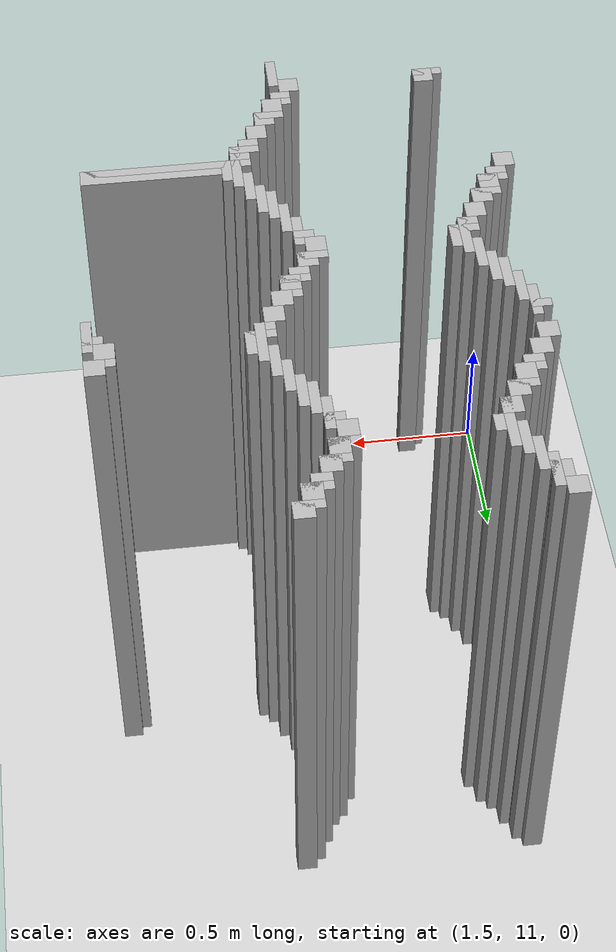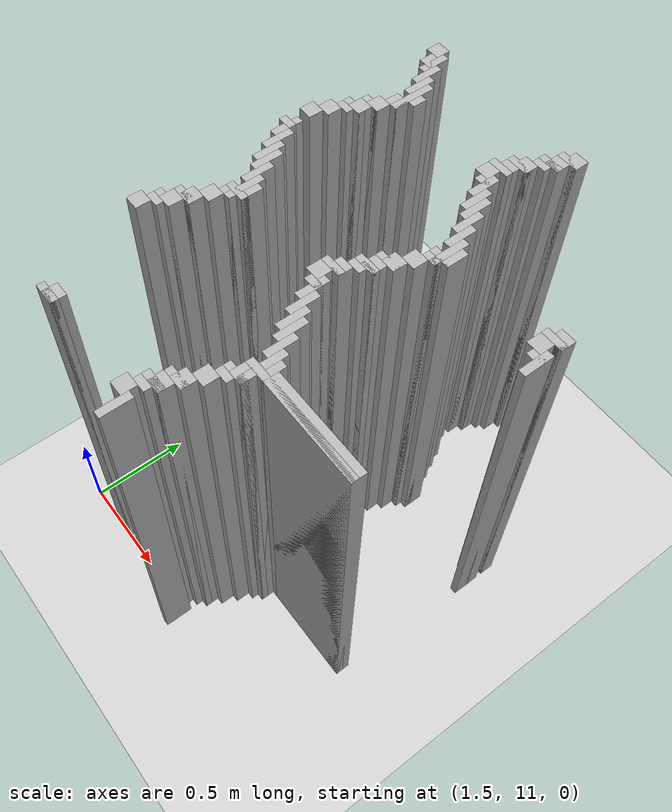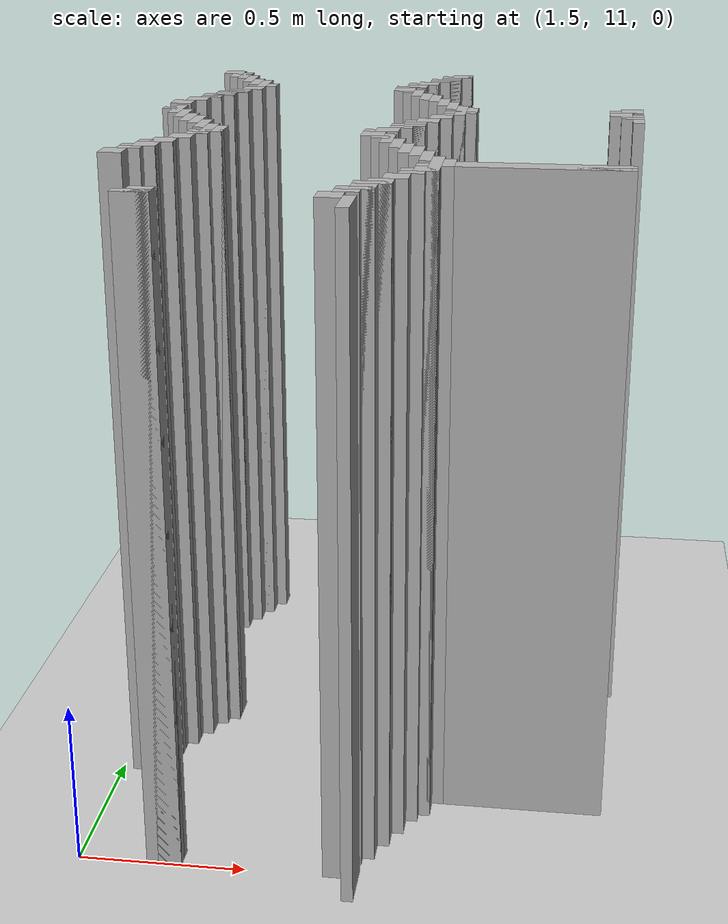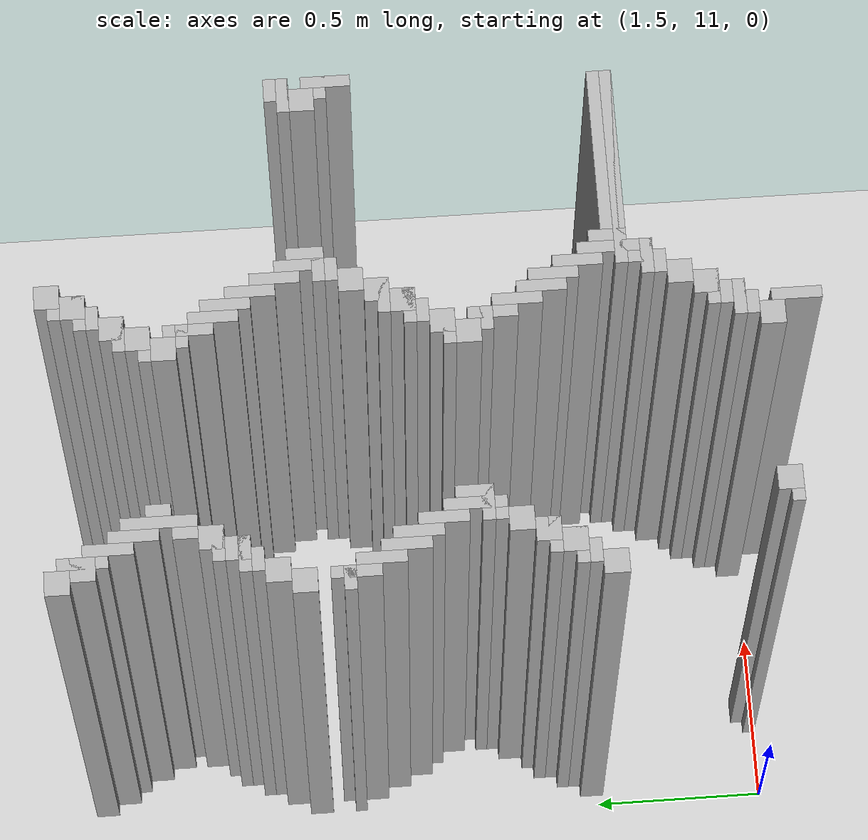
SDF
<sdf version="1.6">
 <world name="slam_world">
  <model name="ground_plane">
   <static>true</static>
   <link name="link">
    <collision name="collision">
     <geometry><plane><normal>0 0 1</normal><size>100 100</size></plane></geometry>
    </collision>
    <visual name="visual">
     <geometry><plane><normal>0 0 1</normal><size>100 100</size></plane></geometry>
     <material>
      <ambient>0.8 0.8 0.8 1</ambient>
      <diffuse>0.8 0.8 0.8 1</diffuse>
      <specular>0.8 0.8 0.8 1</specular>
     </material>
    </visual>
   </link>
  </model>
  <model name="wall_1463">
   <static>true</static>
   <pose>1.6009280742459395 13.016241299303944 1.0 0 0 0</pose>
   <link name="link">
    <collision name="collision">
     <geometry><box><size>0.06960556844547564 0.06960556844547564 2.0</size></box></geometry>
    </collision>
    <visual name="visual">
     <geometry><box><size>0.06960556844547564 0.06960556844547564 2.0</size></box></geometry>
     <material><ambient>0.5 0.5 0.5 1</ambient><diffuse>0.7 0.7 0.7 1</diffuse></material>
    </visual>
   </link>
  </model>
  <model name="wall_1464">
   <static>true</static>
   <pose>2.436194895591647 13.016241299303944 1.0 0 0 0</pose>
   <link name="link">
    <collision name="collision">
     <geometry><box><size>0.06960556844547564 0.06960556844547564 2.0</size></box></geometry>
    </collision>
    <visual name="visual">
     <geometry><box><size>0.06960556844547564 0.06960556844547564 2.0</size></box></geometry>
     <material><ambient>0.5 0.5 0.5 1</ambient><diffuse>0.7 0.7 0.7 1</diffuse></material>
    </visual>
   </link>
  </model>
  <model name="wall_1475">
   <static>true</static>
   <pose>1.6531322505800463 12.946635730858468 1.0 0 0 0</pose>
   <link name="link">
    <collision name="collision">
     <geometry><box><size>0.03480278422273782 0.13921113689095127 2.0</size></box></geometry>
    </collision>
    <visual name="visual">
     <geometry><box><size>0.03480278422273782 0.13921113689095127 2.0</size></box></geometry>
     <material><ambient>0.5 0.5 0.5 1</ambient><diffuse>0.7 0.7 0.7 1</diffuse></material>
    </visual>
   </link>
  </model>
  <model name="wall_1476">
   <static>true</static>
   <pose>2.4187935034802783 12.998839907192576 1.0 0 0 0</pose>
   <link name="link">
    <collision name="collision">
     <geometry><box><size>0.10440835266821345 0.03480278422273782 2.0</size></box></geometry>
    </collision>
    <visual name="visual">
     <geometry><box><size>0.10440835266821345 0.03480278422273782 2.0</size></box></geometry>
     <material><ambient>0.5 0.5 0.5 1</ambient><diffuse>0.7 0.7 0.7 1</diffuse></material>
    </visual>
   </link>
  </model>
  <model name="wall_1487">
   <static>true</static>
   <pose>1.6357308584686774 12.946635730858468 1.0 0 0 0</pose>
   <link name="link">
    <collision name="collision">
     <geometry><box><size>0.06960556844547564 0.06960556844547564 2.0</size></box></geometry>
    </collision>
    <visual name="visual">
     <geometry><box><size>0.06960556844547564 0.06960556844547564 2.0</size></box></geometry>
     <material><ambient>0.5 0.5 0.5 1</ambient><diffuse>0.7 0.7 0.7 1</diffuse></material>
    </visual>
   </link>
  </model>
  <model name="wall_1488">
   <static>true</static>
   <pose>2.4013921113689096 12.946635730858468 1.0 0 0 0</pose>
   <link name="link">
    <collision name="collision">
     <geometry><box><size>0.06960556844547564 0.06960556844547564 2.0</size></box></geometry>
    </collision>
    <visual name="visual">
     <geometry><box><size>0.06960556844547564 0.06960556844547564 2.0</size></box></geometry>
     <material><ambient>0.5 0.5 0.5 1</ambient><diffuse>0.7 0.7 0.7 1</diffuse></material>
    </visual>
   </link>
  </model>
  <model name="wall_1499">
   <static>true</static>
   <pose>1.6879350348027842 12.877030162412993 1.0 0 0 0</pose>
   <link name="link">
    <collision name="collision">
     <geometry><box><size>0.03480278422273782 0.13921113689095127 2.0</size></box></geometry>
    </collision>
    <visual name="visual">
     <geometry><box><size>0.03480278422273782 0.13921113689095127 2.0</size></box></geometry>
     <material><ambient>0.5 0.5 0.5 1</ambient><diffuse>0.7 0.7 0.7 1</diffuse></material>
    </visual>
   </link>
  </model>
  <model name="wall_1500">
   <static>true</static>
   <pose>2.3839907192575405 12.929234338747099 1.0 0 0 0</pose>
   <link name="link">
    <collision name="collision">
     <geometry><box><size>0.10440835266821345 0.03480278422273782 2.0</size></box></geometry>
    </collision>
    <visual name="visual">
     <geometry><box><size>0.10440835266821345 0.03480278422273782 2.0</size></box></geometry>
     <material><ambient>0.5 0.5 0.5 1</ambient><diffuse>0.7 0.7 0.7 1</diffuse></material>
    </visual>
   </link>
  </model>
  <model name="wall_1510">
   <static>true</static>
   <pose>2.3665893271461718 12.894431554524362 1.0 0 0 0</pose>
   <link name="link">
    <collision name="collision">
     <geometry><box><size>0.06960556844547564 0.03480278422273782 2.0</size></box></geometry>
    </collision>
    <visual name="visual">
     <geometry><box><size>0.06960556844547564 0.03480278422273782 2.0</size></box></geometry>
     <material><ambient>0.5 0.5 0.5 1</ambient><diffuse>0.7 0.7 0.7 1</diffuse></material>
    </visual>
   </link>
  </model>
  <model name="wall_1517">
   <static>true</static>
   <pose>1.722737819025522 12.807424593967516 1.0 0 0 0</pose>
   <link name="link">
    <collision name="collision">
     <geometry><box><size>0.03480278422273782 0.13921113689095127 2.0</size></box></geometry>
    </collision>
    <visual name="visual">
     <geometry><box><size>0.03480278422273782 0.13921113689095127 2.0</size></box></geometry>
     <material><ambient>0.5 0.5 0.5 1</ambient><diffuse>0.7 0.7 0.7 1</diffuse></material>
    </visual>
   </link>
  </model>
  <model name="wall_1518">
   <static>true</static>
   <pose>2.331786542923434 12.842227378190255 1.0 0 0 0</pose>
   <link name="link">
    <collision name="collision">
     <geometry><box><size>0.06960556844547564 0.06960556844547564 2.0</size></box></geometry>
    </collision>
    <visual name="visual">
     <geometry><box><size>0.06960556844547564 0.06960556844547564 2.0</size></box></geometry>
     <material><ambient>0.5 0.5 0.5 1</ambient><diffuse>0.7 0.7 0.7 1</diffuse></material>
    </visual>
   </link>
  </model>
  <model name="wall_1529">
   <static>true</static>
   <pose>1.75754060324826 12.737819025522041 1.0 0 0 0</pose>
   <link name="link">
    <collision name="collision">
     <geometry><box><size>0.03480278422273782 0.2088167053364269 2.0</size></box></geometry>
    </collision>
    <visual name="visual">
     <geometry><box><size>0.03480278422273782 0.2088167053364269 2.0</size></box></geometry>
     <material><ambient>0.5 0.5 0.5 1</ambient><diffuse>0.7 0.7 0.7 1</diffuse></material>
    </visual>
   </link>
  </model>
  <model name="wall_1530">
   <static>true</static>
   <pose>2.3143851508120648 12.824825986078885 1.0 0 0 0</pose>
   <link name="link">
    <collision name="collision">
     <geometry><box><size>0.10440835266821345 0.03480278422273782 2.0</size></box></geometry>
    </collision>
    <visual name="visual">
     <geometry><box><size>0.10440835266821345 0.03480278422273782 2.0</size></box></geometry>
     <material><ambient>0.5 0.5 0.5 1</ambient><diffuse>0.7 0.7 0.7 1</diffuse></material>
    </visual>
   </link>
  </model>
  <model name="wall_1540">
   <static>true</static>
   <pose>2.296983758700696 12.772621809744779 1.0 0 0 0</pose>
   <link name="link">
    <collision name="collision">
     <geometry><box><size>0.06960556844547564 0.06960556844547564 2.0</size></box></geometry>
    </collision>
    <visual name="visual">
     <geometry><box><size>0.06960556844547564 0.06960556844547564 2.0</size></box></geometry>
     <material><ambient>0.5 0.5 0.5 1</ambient><diffuse>0.7 0.7 0.7 1</diffuse></material>
    </visual>
   </link>
  </model>
  <model name="wall_1547">
   <static>true</static>
   <pose>1.7923433874709975 12.737819025522041 1.0 0 0 0</pose>
   <link name="link">
    <collision name="collision">
     <geometry><box><size>0.03480278422273782 0.06960556844547564 2.0</size></box></geometry>
    </collision>
    <visual name="visual">
     <geometry><box><size>0.03480278422273782 0.06960556844547564 2.0</size></box></geometry>
     <material><ambient>0.5 0.5 0.5 1</ambient><diffuse>0.7 0.7 0.7 1</diffuse></material>
    </visual>
   </link>
  </model>
  <model name="wall_1548">
   <static>true</static>
   <pose>2.279582366589327 12.75522041763341 1.0 0 0 0</pose>
   <link name="link">
    <collision name="collision">
     <geometry><box><size>0.10440835266821345 0.03480278422273782 2.0</size></box></geometry>
    </collision>
    <visual name="visual">
     <geometry><box><size>0.10440835266821345 0.03480278422273782 2.0</size></box></geometry>
     <material><ambient>0.5 0.5 0.5 1</ambient><diffuse>0.7 0.7 0.7 1</diffuse></material>
    </visual>
   </link>
  </model>
  <model name="wall_1559">
   <static>true</static>
   <pose>2.262180974477958 12.703016241299304 1.0 0 0 0</pose>
   <link name="link">
    <collision name="collision">
     <geometry><box><size>0.06960556844547564 0.06960556844547564 2.0</size></box></geometry>
    </collision>
    <visual name="visual">
     <geometry><box><size>0.06960556844547564 0.06960556844547564 2.0</size></box></geometry>
     <material><ambient>0.5 0.5 0.5 1</ambient><diffuse>0.7 0.7 0.7 1</diffuse></material>
    </visual>
   </link>
  </model>
  <model name="wall_1571">
   <static>true</static>
   <pose>1.740139211136891 12.668213457076565 1.0 0 0 0</pose>
   <link name="link">
    <collision name="collision">
     <geometry><box><size>0.06960556844547564 0.06960556844547564 2.0</size></box></geometry>
    </collision>
    <visual name="visual">
     <geometry><box><size>0.06960556844547564 0.06960556844547564 2.0</size></box></geometry>
     <material><ambient>0.5 0.5 0.5 1</ambient><diffuse>0.7 0.7 0.7 1</diffuse></material>
    </visual>
   </link>
  </model>
  <model name="wall_1572">
   <static>true</static>
   <pose>2.3143851508120648 12.633410672853827 1.0 0 0 0</pose>
   <link name="link">
    <collision name="collision">
     <geometry><box><size>0.03480278422273782 0.13921113689095127 2.0</size></box></geometry>
    </collision>
    <visual name="visual">
     <geometry><box><size>0.03480278422273782 0.13921113689095127 2.0</size></box></geometry>
     <material><ambient>0.5 0.5 0.5 1</ambient><diffuse>0.7 0.7 0.7 1</diffuse></material>
    </visual>
   </link>
  </model>
  <model name="wall_1588">
   <static>true</static>
   <pose>2.296983758700696 12.650812064965196 1.0 0 0 0</pose>
   <link name="link">
    <collision name="collision">
     <geometry><box><size>0.06960556844547564 0.03480278422273782 2.0</size></box></geometry>
    </collision>
    <visual name="visual">
     <geometry><box><size>0.06960556844547564 0.03480278422273782 2.0</size></box></geometry>
     <material><ambient>0.5 0.5 0.5 1</ambient><diffuse>0.7 0.7 0.7 1</diffuse></material>
    </visual>
   </link>
  </model>
  <model name="wall_1601">
   <static>true</static>
   <pose>1.705336426914153 12.59860788863109 1.0 0 0 0</pose>
   <link name="link">
    <collision name="collision">
     <geometry><box><size>0.06960556844547564 0.06960556844547564 2.0</size></box></geometry>
    </collision>
    <visual name="visual">
     <geometry><box><size>0.06960556844547564 0.06960556844547564 2.0</size></box></geometry>
     <material><ambient>0.5 0.5 0.5 1</ambient><diffuse>0.7 0.7 0.7 1</diffuse></material>
    </visual>
   </link>
  </model>
  <model name="wall_1602">
   <static>true</static>
   <pose>2.3491879350348026 12.563805104408353 1.0 0 0 0</pose>
   <link name="link">
    <collision name="collision">
     <geometry><box><size>0.03480278422273782 0.13921113689095127 2.0</size></box></geometry>
    </collision>
    <visual name="visual">
     <geometry><box><size>0.03480278422273782 0.13921113689095127 2.0</size></box></geometry>
     <material><ambient>0.5 0.5 0.5 1</ambient><diffuse>0.7 0.7 0.7 1</diffuse></material>
    </visual>
   </link>
  </model>
  <model name="wall_1618">
   <static>true</static>
   <pose>1.6879350348027842 12.581206496519721 1.0 0 0 0</pose>
   <link name="link">
    <collision name="collision">
     <geometry><box><size>0.10440835266821345 0.03480278422273782 2.0</size></box></geometry>
    </collision>
    <visual name="visual">
     <geometry><box><size>0.10440835266821345 0.03480278422273782 2.0</size></box></geometry>
     <material><ambient>0.5 0.5 0.5 1</ambient><diffuse>0.7 0.7 0.7 1</diffuse></material>
    </visual>
   </link>
  </model>
  <model name="wall_1619">
   <static>true</static>
   <pose>2.3839907192575405 12.529002320185615 1.0 0 0 0</pose>
   <link name="link">
    <collision name="collision">
     <geometry><box><size>0.03480278422273782 0.13921113689095127 2.0</size></box></geometry>
    </collision>
    <visual name="visual">
     <geometry><box><size>0.03480278422273782 0.13921113689095127 2.0</size></box></geometry>
     <material><ambient>0.5 0.5 0.5 1</ambient><diffuse>0.7 0.7 0.7 1</diffuse></material>
    </visual>
   </link>
  </model>
  <model name="wall_1634">
   <static>true</static>
   <pose>1.6705336426914152 12.529002320185615 1.0 0 0 0</pose>
   <link name="link">
    <collision name="collision">
     <geometry><box><size>0.06960556844547564 0.06960556844547564 2.0</size></box></geometry>
    </collision>
    <visual name="visual">
     <geometry><box><size>0.06960556844547564 0.06960556844547564 2.0</size></box></geometry>
     <material><ambient>0.5 0.5 0.5 1</ambient><diffuse>0.7 0.7 0.7 1</diffuse></material>
    </visual>
   </link>
  </model>
  <model name="wall_1646">
   <static>true</static>
   <pose>1.6531322505800463 12.511600928074245 1.0 0 0 0</pose>
   <link name="link">
    <collision name="collision">
     <geometry><box><size>0.10440835266821345 0.03480278422273782 2.0</size></box></geometry>
    </collision>
    <visual name="visual">
     <geometry><box><size>0.10440835266821345 0.03480278422273782 2.0</size></box></geometry>
     <material><ambient>0.5 0.5 0.5 1</ambient><diffuse>0.7 0.7 0.7 1</diffuse></material>
    </visual>
   </link>
  </model>
  <model name="wall_1647">
   <static>true</static>
   <pose>2.4187935034802783 12.459396751740138 1.0 0 0 0</pose>
   <link name="link">
    <collision name="collision">
     <geometry><box><size>0.03480278422273782 0.13921113689095127 2.0</size></box></geometry>
    </collision>
    <visual name="visual">
     <geometry><box><size>0.03480278422273782 0.13921113689095127 2.0</size></box></geometry>
     <material><ambient>0.5 0.5 0.5 1</ambient><diffuse>0.7 0.7 0.7 1</diffuse></material>
    </visual>
   </link>
  </model>
  <model name="wall_1662">
   <static>true</static>
   <pose>1.6357308584686774 12.476798143851507 1.0 0 0 0</pose>
   <link name="link">
    <collision name="collision">
     <geometry><box><size>0.06960556844547564 0.03480278422273782 2.0</size></box></geometry>
    </collision>
    <visual name="visual">
     <geometry><box><size>0.06960556844547564 0.03480278422273782 2.0</size></box></geometry>
     <material><ambient>0.5 0.5 0.5 1</ambient><diffuse>0.7 0.7 0.7 1</diffuse></material>
    </visual>
   </link>
  </model>
  <model name="wall_1672">
   <static>true</static>
   <pose>1.6009280742459395 12.424593967517401 1.0 0 0 0</pose>
   <link name="link">
    <collision name="collision">
     <geometry><box><size>0.06960556844547564 0.06960556844547564 2.0</size></box></geometry>
    </collision>
    <visual name="visual">
     <geometry><box><size>0.06960556844547564 0.06960556844547564 2.0</size></box></geometry>
     <material><ambient>0.5 0.5 0.5 1</ambient><diffuse>0.7 0.7 0.7 1</diffuse></material>
    </visual>
   </link>
  </model>
  <model name="wall_1673">
   <static>true</static>
   <pose>2.453596287703016 12.389791183294664 1.0 0 0 0</pose>
   <link name="link">
    <collision name="collision">
     <geometry><box><size>0.03480278422273782 0.13921113689095127 2.0</size></box></geometry>
    </collision>
    <visual name="visual">
     <geometry><box><size>0.03480278422273782 0.13921113689095127 2.0</size></box></geometry>
     <material><ambient>0.5 0.5 0.5 1</ambient><diffuse>0.7 0.7 0.7 1</diffuse></material>
    </visual>
   </link>
  </model>
  <model name="wall_1689">
   <static>true</static>
   <pose>1.5661252900232019 12.354988399071924 1.0 0 0 0</pose>
   <link name="link">
    <collision name="collision">
     <geometry><box><size>0.06960556844547564 0.06960556844547564 2.0</size></box></geometry>
    </collision>
    <visual name="visual">
     <geometry><box><size>0.06960556844547564 0.06960556844547564 2.0</size></box></geometry>
     <material><ambient>0.5 0.5 0.5 1</ambient><diffuse>0.7 0.7 0.7 1</diffuse></material>
    </visual>
   </link>
  </model>
  <model name="wall_1690">
   <static>true</static>
   <pose>2.488399071925754 12.302784222737818 1.0 0 0 0</pose>
   <link name="link">
    <collision name="collision">
     <geometry><box><size>0.03480278422273782 0.17401392111368907 2.0</size></box></geometry>
    </collision>
    <visual name="visual">
     <geometry><box><size>0.03480278422273782 0.17401392111368907 2.0</size></box></geometry>
     <material><ambient>0.5 0.5 0.5 1</ambient><diffuse>0.7 0.7 0.7 1</diffuse></material>
    </visual>
   </link>
  </model>
  <model name="wall_1691">
   <static>true</static>
   <pose>3.02784222737819 12.354988399071924 1.0 0 0 0</pose>
   <link name="link">
    <collision name="collision">
     <geometry><box><size>0.06960556844547564 0.06960556844547564 2.0</size></box></geometry>
    </collision>
    <visual name="visual">
     <geometry><box><size>0.06960556844547564 0.06960556844547564 2.0</size></box></geometry>
     <material><ambient>0.5 0.5 0.5 1</ambient><diffuse>0.7 0.7 0.7 1</diffuse></material>
    </visual>
   </link>
  </model>
  <model name="wall_1707">
   <static>true</static>
   <pose>2.523201856148492 12.302784222737818 1.0 0 0 0</pose>
   <link name="link">
    <collision name="collision">
     <geometry><box><size>0.03480278422273782 0.10440835266821345 2.0</size></box></geometry>
    </collision>
    <visual name="visual">
     <geometry><box><size>0.03480278422273782 0.10440835266821345 2.0</size></box></geometry>
     <material><ambient>0.5 0.5 0.5 1</ambient><diffuse>0.7 0.7 0.7 1</diffuse></material>
    </visual>
   </link>
  </model>
  <model name="wall_1708">
   <static>true</static>
   <pose>3.010440835266821 12.337587006960556 1.0 0 0 0</pose>
   <link name="link">
    <collision name="collision">
     <geometry><box><size>0.10440835266821345 0.03480278422273782 2.0</size></box></geometry>
    </collision>
    <visual name="visual">
     <geometry><box><size>0.10440835266821345 0.03480278422273782 2.0</size></box></geometry>
     <material><ambient>0.5 0.5 0.5 1</ambient><diffuse>0.7 0.7 0.7 1</diffuse></material>
    </visual>
   </link>
  </model>
  <model name="wall_1721">
   <static>true</static>
   <pose>2.9930394431554523 12.28538283062645 1.0 0 0 0</pose>
   <link name="link">
    <collision name="collision">
     <geometry><box><size>0.06960556844547564 0.06960556844547564 2.0</size></box></geometry>
    </collision>
    <visual name="visual">
     <geometry><box><size>0.06960556844547564 0.06960556844547564 2.0</size></box></geometry>
     <material><ambient>0.5 0.5 0.5 1</ambient><diffuse>0.7 0.7 0.7 1</diffuse></material>
    </visual>
   </link>
  </model>
  <model name="wall_1733">
   <static>true</static>
   <pose>1.5835266821345706 12.215777262180975 1.0 0 0 0</pose>
   <link name="link">
    <collision name="collision">
     <geometry><box><size>0.03480278422273782 0.13921113689095127 2.0</size></box></geometry>
    </collision>
    <visual name="visual">
     <geometry><box><size>0.03480278422273782 0.13921113689095127 2.0</size></box></geometry>
     <material><ambient>0.5 0.5 0.5 1</ambient><diffuse>0.7 0.7 0.7 1</diffuse></material>
    </visual>
   </link>
  </model>
  <model name="wall_1734">
   <static>true</static>
   <pose>2.488399071925754 12.267981438515081 1.0 0 0 0</pose>
   <link name="link">
    <collision name="collision">
     <geometry><box><size>0.10440835266821345 0.03480278422273782 2.0</size></box></geometry>
    </collision>
    <visual name="visual">
     <geometry><box><size>0.10440835266821345 0.03480278422273782 2.0</size></box></geometry>
     <material><ambient>0.5 0.5 0.5 1</ambient><diffuse>0.7 0.7 0.7 1</diffuse></material>
    </visual>
   </link>
  </model>
  <model name="wall_1735">
   <static>true</static>
   <pose>3.045243619489559 12.215777262180975 1.0 0 0 0</pose>
   <link name="link">
    <collision name="collision">
     <geometry><box><size>0.03480278422273782 0.13921113689095127 2.0</size></box></geometry>
    </collision>
    <visual name="visual">
     <geometry><box><size>0.03480278422273782 0.13921113689095127 2.0</size></box></geometry>
     <material><ambient>0.5 0.5 0.5 1</ambient><diffuse>0.7 0.7 0.7 1</diffuse></material>
    </visual>
   </link>
  </model>
  <model name="wall_1751">
   <static>true</static>
   <pose>1.5661252900232019 12.233178654292344 1.0 0 0 0</pose>
   <link name="link">
    <collision name="collision">
     <geometry><box><size>0.06960556844547564 0.03480278422273782 2.0</size></box></geometry>
    </collision>
    <visual name="visual">
     <geometry><box><size>0.06960556844547564 0.03480278422273782 2.0</size></box></geometry>
     <material><ambient>0.5 0.5 0.5 1</ambient><diffuse>0.7 0.7 0.7 1</diffuse></material>
    </visual>
   </link>
  </model>
  <model name="wall_1752">
   <static>true</static>
   <pose>2.470997679814385 12.233178654292344 1.0 0 0 0</pose>
   <link name="link">
    <collision name="collision">
     <geometry><box><size>0.06960556844547564 0.03480278422273782 2.0</size></box></geometry>
    </collision>
    <visual name="visual">
     <geometry><box><size>0.06960556844547564 0.03480278422273782 2.0</size></box></geometry>
     <material><ambient>0.5 0.5 0.5 1</ambient><diffuse>0.7 0.7 0.7 1</diffuse></material>
    </visual>
   </link>
  </model>
  <model name="wall_1753">
   <static>true</static>
   <pose>3.02784222737819 12.233178654292344 1.0 0 0 0</pose>
   <link name="link">
    <collision name="collision">
     <geometry><box><size>0.06960556844547564 0.03480278422273782 2.0</size></box></geometry>
    </collision>
    <visual name="visual">
     <geometry><box><size>0.06960556844547564 0.03480278422273782 2.0</size></box></geometry>
     <material><ambient>0.5 0.5 0.5 1</ambient><diffuse>0.7 0.7 0.7 1</diffuse></material>
    </visual>
   </link>
  </model>
  <model name="wall_1767">
   <static>true</static>
   <pose>1.6183294663573085 12.146171693735498 1.0 0 0 0</pose>
   <link name="link">
    <collision name="collision">
     <geometry><box><size>0.03480278422273782 0.13921113689095127 2.0</size></box></geometry>
    </collision>
    <visual name="visual">
     <geometry><box><size>0.03480278422273782 0.13921113689095127 2.0</size></box></geometry>
     <material><ambient>0.5 0.5 0.5 1</ambient><diffuse>0.7 0.7 0.7 1</diffuse></material>
    </visual>
   </link>
  </model>
  <model name="wall_1768">
   <static>true</static>
   <pose>2.436194895591647 12.180974477958236 1.0 0 0 0</pose>
   <link name="link">
    <collision name="collision">
     <geometry><box><size>0.06960556844547564 0.06960556844547564 2.0</size></box></geometry>
    </collision>
    <visual name="visual">
     <geometry><box><size>0.06960556844547564 0.06960556844547564 2.0</size></box></geometry>
     <material><ambient>0.5 0.5 0.5 1</ambient><diffuse>0.7 0.7 0.7 1</diffuse></material>
    </visual>
   </link>
  </model>
  <model name="wall_1783">
   <static>true</static>
   <pose>1.6531322505800463 12.076566125290023 1.0 0 0 0</pose>
   <link name="link">
    <collision name="collision">
     <geometry><box><size>0.03480278422273782 0.13921113689095127 2.0</size></box></geometry>
    </collision>
    <visual name="visual">
     <geometry><box><size>0.03480278422273782 0.13921113689095127 2.0</size></box></geometry>
     <material><ambient>0.5 0.5 0.5 1</ambient><diffuse>0.7 0.7 0.7 1</diffuse></material>
    </visual>
   </link>
  </model>
  <model name="wall_1784">
   <static>true</static>
   <pose>2.4013921113689096 12.11136890951276 1.0 0 0 0</pose>
   <link name="link">
    <collision name="collision">
     <geometry><box><size>0.06960556844547564 0.06960556844547564 2.0</size></box></geometry>
    </collision>
    <visual name="visual">
     <geometry><box><size>0.06960556844547564 0.06960556844547564 2.0</size></box></geometry>
     <material><ambient>0.5 0.5 0.5 1</ambient><diffuse>0.7 0.7 0.7 1</diffuse></material>
    </visual>
   </link>
  </model>
  <model name="wall_1799">
   <static>true</static>
   <pose>1.6879350348027842 12.041763341067284 1.0 0 0 0</pose>
   <link name="link">
    <collision name="collision">
     <geometry><box><size>0.03480278422273782 0.13921113689095127 2.0</size></box></geometry>
    </collision>
    <visual name="visual">
     <geometry><box><size>0.03480278422273782 0.13921113689095127 2.0</size></box></geometry>
     <material><ambient>0.5 0.5 0.5 1</ambient><diffuse>0.7 0.7 0.7 1</diffuse></material>
    </visual>
   </link>
  </model>
  <model name="wall_1800">
   <static>true</static>
   <pose>2.3839907192575405 12.093967517401392 1.0 0 0 0</pose>
   <link name="link">
    <collision name="collision">
     <geometry><box><size>0.10440835266821345 0.03480278422273782 2.0</size></box></geometry>
    </collision>
    <visual name="visual">
     <geometry><box><size>0.10440835266821345 0.03480278422273782 2.0</size></box></geometry>
     <material><ambient>0.5 0.5 0.5 1</ambient><diffuse>0.7 0.7 0.7 1</diffuse></material>
    </visual>
   </link>
  </model>
  <model name="wall_1814">
   <static>true</static>
   <pose>2.3665893271461718 12.041763341067284 1.0 0 0 0</pose>
   <link name="link">
    <collision name="collision">
     <geometry><box><size>0.06960556844547564 0.06960556844547564 2.0</size></box></geometry>
    </collision>
    <visual name="visual">
     <geometry><box><size>0.06960556844547564 0.06960556844547564 2.0</size></box></geometry>
     <material><ambient>0.5 0.5 0.5 1</ambient><diffuse>0.7 0.7 0.7 1</diffuse></material>
    </visual>
   </link>
  </model>
  <model name="wall_1825">
   <static>true</static>
   <pose>1.722737819025522 11.97215777262181 1.0 0 0 0</pose>
   <link name="link">
    <collision name="collision">
     <geometry><box><size>0.03480278422273782 0.13921113689095127 2.0</size></box></geometry>
    </collision>
    <visual name="visual">
     <geometry><box><size>0.03480278422273782 0.13921113689095127 2.0</size></box></geometry>
     <material><ambient>0.5 0.5 0.5 1</ambient><diffuse>0.7 0.7 0.7 1</diffuse></material>
    </visual>
   </link>
  </model>
  <model name="wall_1826">
   <static>true</static>
   <pose>2.3491879350348026 12.024361948955915 1.0 0 0 0</pose>
   <link name="link">
    <collision name="collision">
     <geometry><box><size>0.10440835266821345 0.03480278422273782 2.0</size></box></geometry>
    </collision>
    <visual name="visual">
     <geometry><box><size>0.10440835266821345 0.03480278422273782 2.0</size></box></geometry>
     <material><ambient>0.5 0.5 0.5 1</ambient><diffuse>0.7 0.7 0.7 1</diffuse></material>
    </visual>
   </link>
  </model>
  <model name="wall_1840">
   <static>true</static>
   <pose>2.331786542923434 11.989559164733178 1.0 0 0 0</pose>
   <link name="link">
    <collision name="collision">
     <geometry><box><size>0.06960556844547564 0.03480278422273782 2.0</size></box></geometry>
    </collision>
    <visual name="visual">
     <geometry><box><size>0.06960556844547564 0.03480278422273782 2.0</size></box></geometry>
     <material><ambient>0.5 0.5 0.5 1</ambient><diffuse>0.7 0.7 0.7 1</diffuse></material>
    </visual>
   </link>
  </model>
  <model name="wall_1849">
   <static>true</static>
   <pose>1.75754060324826 11.885150812064964 1.0 0 0 0</pose>
   <link name="link">
    <collision name="collision">
     <geometry><box><size>0.03480278422273782 0.17401392111368907 2.0</size></box></geometry>
    </collision>
    <visual name="visual">
     <geometry><box><size>0.03480278422273782 0.17401392111368907 2.0</size></box></geometry>
     <material><ambient>0.5 0.5 0.5 1</ambient><diffuse>0.7 0.7 0.7 1</diffuse></material>
    </visual>
   </link>
  </model>
  <model name="wall_1850">
   <static>true</static>
   <pose>2.296983758700696 11.937354988399072 1.0 0 0 0</pose>
   <link name="link">
    <collision name="collision">
     <geometry><box><size>0.06960556844547564 0.06960556844547564 2.0</size></box></geometry>
    </collision>
    <visual name="visual">
     <geometry><box><size>0.06960556844547564 0.06960556844547564 2.0</size></box></geometry>
     <material><ambient>0.5 0.5 0.5 1</ambient><diffuse>0.7 0.7 0.7 1</diffuse></material>
    </visual>
   </link>
  </model>
  <model name="wall_1865">
   <static>true</static>
   <pose>1.7923433874709975 11.885150812064964 1.0 0 0 0</pose>
   <link name="link">
    <collision name="collision">
     <geometry><box><size>0.03480278422273782 0.10440835266821345 2.0</size></box></geometry>
    </collision>
    <visual name="visual">
     <geometry><box><size>0.03480278422273782 0.10440835266821345 2.0</size></box></geometry>
     <material><ambient>0.5 0.5 0.5 1</ambient><diffuse>0.7 0.7 0.7 1</diffuse></material>
    </visual>
   </link>
  </model>
  <model name="wall_1866">
   <static>true</static>
   <pose>2.279582366589327 11.919953596287703 1.0 0 0 0</pose>
   <link name="link">
    <collision name="collision">
     <geometry><box><size>0.10440835266821345 0.03480278422273782 2.0</size></box></geometry>
    </collision>
    <visual name="visual">
     <geometry><box><size>0.10440835266821345 0.03480278422273782 2.0</size></box></geometry>
     <material><ambient>0.5 0.5 0.5 1</ambient><diffuse>0.7 0.7 0.7 1</diffuse></material>
    </visual>
   </link>
  </model>
  <model name="wall_1880">
   <static>true</static>
   <pose>2.262180974477958 11.867749419953595 1.0 0 0 0</pose>
   <link name="link">
    <collision name="collision">
     <geometry><box><size>0.06960556844547564 0.06960556844547564 2.0</size></box></geometry>
    </collision>
    <visual name="visual">
     <geometry><box><size>0.06960556844547564 0.06960556844547564 2.0</size></box></geometry>
     <material><ambient>0.5 0.5 0.5 1</ambient><diffuse>0.7 0.7 0.7 1</diffuse></material>
    </visual>
   </link>
  </model>
  <model name="wall_1891">
   <static>true</static>
   <pose>1.75754060324826 11.850348027842227 1.0 0 0 0</pose>
   <link name="link">
    <collision name="collision">
     <geometry><box><size>0.10440835266821345 0.03480278422273782 2.0</size></box></geometry>
    </collision>
    <visual name="visual">
     <geometry><box><size>0.10440835266821345 0.03480278422273782 2.0</size></box></geometry>
     <material><ambient>0.5 0.5 0.5 1</ambient><diffuse>0.7 0.7 0.7 1</diffuse></material>
    </visual>
   </link>
  </model>
  <model name="wall_1892">
   <static>true</static>
   <pose>2.3143851508120648 11.79814385150812 1.0 0 0 0</pose>
   <link name="link">
    <collision name="collision">
     <geometry><box><size>0.03480278422273782 0.13921113689095127 2.0</size></box></geometry>
    </collision>
    <visual name="visual">
     <geometry><box><size>0.03480278422273782 0.13921113689095127 2.0</size></box></geometry>
     <material><ambient>0.5 0.5 0.5 1</ambient><diffuse>0.7 0.7 0.7 1</diffuse></material>
    </visual>
   </link>
  </model>
  <model name="wall_1905">
   <static>true</static>
   <pose>1.740139211136891 11.81554524361949 1.0 0 0 0</pose>
   <link name="link">
    <collision name="collision">
     <geometry><box><size>0.06960556844547564 0.03480278422273782 2.0</size></box></geometry>
    </collision>
    <visual name="visual">
     <geometry><box><size>0.06960556844547564 0.03480278422273782 2.0</size></box></geometry>
     <material><ambient>0.5 0.5 0.5 1</ambient><diffuse>0.7 0.7 0.7 1</diffuse></material>
    </visual>
   </link>
  </model>
  <model name="wall_1906">
   <static>true</static>
   <pose>2.296983758700696 11.81554524361949 1.0 0 0 0</pose>
   <link name="link">
    <collision name="collision">
     <geometry><box><size>0.06960556844547564 0.03480278422273782 2.0</size></box></geometry>
    </collision>
    <visual name="visual">
     <geometry><box><size>0.06960556844547564 0.03480278422273782 2.0</size></box></geometry>
     <material><ambient>0.5 0.5 0.5 1</ambient><diffuse>0.7 0.7 0.7 1</diffuse></material>
    </visual>
   </link>
  </model>
  <model name="wall_1921">
   <static>true</static>
   <pose>1.705336426914153 11.763341067285383 1.0 0 0 0</pose>
   <link name="link">
    <collision name="collision">
     <geometry><box><size>0.06960556844547564 0.06960556844547564 2.0</size></box></geometry>
    </collision>
    <visual name="visual">
     <geometry><box><size>0.06960556844547564 0.06960556844547564 2.0</size></box></geometry>
     <material><ambient>0.5 0.5 0.5 1</ambient><diffuse>0.7 0.7 0.7 1</diffuse></material>
    </visual>
   </link>
  </model>
  <model name="wall_1922">
   <static>true</static>
   <pose>2.3491879350348026 11.728538283062644 1.0 0 0 0</pose>
   <link name="link">
    <collision name="collision">
     <geometry><box><size>0.03480278422273782 0.13921113689095127 2.0</size></box></geometry>
    </collision>
    <visual name="visual">
     <geometry><box><size>0.03480278422273782 0.13921113689095127 2.0</size></box></geometry>
     <material><ambient>0.5 0.5 0.5 1</ambient><diffuse>0.7 0.7 0.7 1</diffuse></material>
    </visual>
   </link>
  </model>
  <model name="wall_1937">
   <static>true</static>
   <pose>1.6705336426914152 11.693735498839906 1.0 0 0 0</pose>
   <link name="link">
    <collision name="collision">
     <geometry><box><size>0.06960556844547564 0.06960556844547564 2.0</size></box></geometry>
    </collision>
    <visual name="visual">
     <geometry><box><size>0.06960556844547564 0.06960556844547564 2.0</size></box></geometry>
     <material><ambient>0.5 0.5 0.5 1</ambient><diffuse>0.7 0.7 0.7 1</diffuse></material>
    </visual>
   </link>
  </model>
  <model name="wall_1938">
   <static>true</static>
   <pose>2.3839907192575405 11.658932714617169 1.0 0 0 0</pose>
   <link name="link">
    <collision name="collision">
     <geometry><box><size>0.03480278422273782 0.13921113689095127 2.0</size></box></geometry>
    </collision>
    <visual name="visual">
     <geometry><box><size>0.03480278422273782 0.13921113689095127 2.0</size></box></geometry>
     <material><ambient>0.5 0.5 0.5 1</ambient><diffuse>0.7 0.7 0.7 1</diffuse></material>
    </visual>
   </link>
  </model>
  <model name="wall_1953">
   <static>true</static>
   <pose>1.6531322505800463 11.676334106728538 1.0 0 0 0</pose>
   <link name="link">
    <collision name="collision">
     <geometry><box><size>0.10440835266821345 0.03480278422273782 2.0</size></box></geometry>
    </collision>
    <visual name="visual">
     <geometry><box><size>0.10440835266821345 0.03480278422273782 2.0</size></box></geometry>
     <material><ambient>0.5 0.5 0.5 1</ambient><diffuse>0.7 0.7 0.7 1</diffuse></material>
    </visual>
   </link>
  </model>
  <model name="wall_1954">
   <static>true</static>
   <pose>2.4187935034802783 11.624129930394432 1.0 0 0 0</pose>
   <link name="link">
    <collision name="collision">
     <geometry><box><size>0.03480278422273782 0.13921113689095127 2.0</size></box></geometry>
    </collision>
    <visual name="visual">
     <geometry><box><size>0.03480278422273782 0.13921113689095127 2.0</size></box></geometry>
     <material><ambient>0.5 0.5 0.5 1</ambient><diffuse>0.7 0.7 0.7 1</diffuse></material>
    </visual>
   </link>
  </model>
  <model name="wall_1969">
   <static>true</static>
   <pose>1.6357308584686774 11.624129930394432 1.0 0 0 0</pose>
   <link name="link">
    <collision name="collision">
     <geometry><box><size>0.06960556844547564 0.06960556844547564 2.0</size></box></geometry>
    </collision>
    <visual name="visual">
     <geometry><box><size>0.06960556844547564 0.06960556844547564 2.0</size></box></geometry>
     <material><ambient>0.5 0.5 0.5 1</ambient><diffuse>0.7 0.7 0.7 1</diffuse></material>
    </visual>
   </link>
  </model>
  <model name="wall_1979">
   <static>true</static>
   <pose>1.6183294663573085 11.606728538283063 1.0 0 0 0</pose>
   <link name="link">
    <collision name="collision">
     <geometry><box><size>0.10440835266821345 0.03480278422273782 2.0</size></box></geometry>
    </collision>
    <visual name="visual">
     <geometry><box><size>0.10440835266821345 0.03480278422273782 2.0</size></box></geometry>
     <material><ambient>0.5 0.5 0.5 1</ambient><diffuse>0.7 0.7 0.7 1</diffuse></material>
    </visual>
   </link>
  </model>
  <model name="wall_1980">
   <static>true</static>
   <pose>2.453596287703016 11.554524361948955 1.0 0 0 0</pose>
   <link name="link">
    <collision name="collision">
     <geometry><box><size>0.03480278422273782 0.13921113689095127 2.0</size></box></geometry>
    </collision>
    <visual name="visual">
     <geometry><box><size>0.03480278422273782 0.13921113689095127 2.0</size></box></geometry>
     <material><ambient>0.5 0.5 0.5 1</ambient><diffuse>0.7 0.7 0.7 1</diffuse></material>
    </visual>
   </link>
  </model>
  <model name="wall_1995">
   <static>true</static>
   <pose>1.6009280742459395 11.571925754060324 1.0 0 0 0</pose>
   <link name="link">
    <collision name="collision">
     <geometry><box><size>0.06960556844547564 0.03480278422273782 2.0</size></box></geometry>
    </collision>
    <visual name="visual">
     <geometry><box><size>0.06960556844547564 0.03480278422273782 2.0</size></box></geometry>
     <material><ambient>0.5 0.5 0.5 1</ambient><diffuse>0.7 0.7 0.7 1</diffuse></material>
    </visual>
   </link>
  </model>
  <model name="wall_2002">
   <static>true</static>
   <pose>1.5661252900232019 11.519721577726218 1.0 0 0 0</pose>
   <link name="link">
    <collision name="collision">
     <geometry><box><size>0.06960556844547564 0.06960556844547564 2.0</size></box></geometry>
    </collision>
    <visual name="visual">
     <geometry><box><size>0.06960556844547564 0.06960556844547564 2.0</size></box></geometry>
     <material><ambient>0.5 0.5 0.5 1</ambient><diffuse>0.7 0.7 0.7 1</diffuse></material>
    </visual>
   </link>
  </model>
  <model name="wall_2003">
   <static>true</static>
   <pose>2.488399071925754 11.450116009280743 1.0 0 0 0</pose>
   <link name="link">
    <collision name="collision">
     <geometry><box><size>0.03480278422273782 0.2088167053364269 2.0</size></box></geometry>
    </collision>
    <visual name="visual">
     <geometry><box><size>0.03480278422273782 0.2088167053364269 2.0</size></box></geometry>
     <material><ambient>0.5 0.5 0.5 1</ambient><diffuse>0.7 0.7 0.7 1</diffuse></material>
    </visual>
   </link>
  </model>
  <model name="wall_2018">
   <static>true</static>
   <pose>2.523201856148492 11.467517401392112 1.0 0 0 0</pose>
   <link name="link">
    <collision name="collision">
     <geometry><box><size>0.03480278422273782 0.10440835266821345 2.0</size></box></geometry>
    </collision>
    <visual name="visual">
     <geometry><box><size>0.03480278422273782 0.10440835266821345 2.0</size></box></geometry>
     <material><ambient>0.5 0.5 0.5 1</ambient><diffuse>0.7 0.7 0.7 1</diffuse></material>
    </visual>
   </link>
  </model>
  <model name="wall_2034">
   <static>true</static>
   <pose>2.784222737819025 11.450116009280743 1.0 0 0 0</pose>
   <link name="link">
    <collision name="collision">
     <geometry><box><size>0.4872389791183295 0.06960556844547564 2.0</size></box></geometry>
    </collision>
    <visual name="visual">
     <geometry><box><size>0.4872389791183295 0.06960556844547564 2.0</size></box></geometry>
     <material><ambient>0.5 0.5 0.5 1</ambient><diffuse>0.7 0.7 0.7 1</diffuse></material>
    </visual>
   </link>
  </model>
  <model name="wall_2045">
   <static>true</static>
   <pose>2.7320185614849186 11.432714617169372 1.0 0 0 0</pose>
   <link name="link">
    <collision name="collision">
     <geometry><box><size>0.5916473317865429 0.03480278422273782 2.0</size></box></geometry>
    </collision>
    <visual name="visual">
     <geometry><box><size>0.5916473317865429 0.03480278422273782 2.0</size></box></geometry>
     <material><ambient>0.5 0.5 0.5 1</ambient><diffuse>0.7 0.7 0.7 1</diffuse></material>
    </visual>
   </link>
  </model>
  <model name="wall_2056">
   <static>true</static>
   <pose>2.470997679814385 11.380510440835266 1.0 0 0 0</pose>
   <link name="link">
    <collision name="collision">
     <geometry><box><size>0.06960556844547564 0.06960556844547564 2.0</size></box></geometry>
    </collision>
    <visual name="visual">
     <geometry><box><size>0.06960556844547564 0.06960556844547564 2.0</size></box></geometry>
     <material><ambient>0.5 0.5 0.5 1</ambient><diffuse>0.7 0.7 0.7 1</diffuse></material>
    </visual>
   </link>
  </model>
  <model name="wall_2068">
   <static>true</static>
   <pose>2.453596287703016 11.363109048723897 1.0 0 0 0</pose>
   <link name="link">
    <collision name="collision">
     <geometry><box><size>0.10440835266821345 0.03480278422273782 2.0</size></box></geometry>
    </collision>
    <visual name="visual">
     <geometry><box><size>0.10440835266821345 0.03480278422273782 2.0</size></box></geometry>
     <material><ambient>0.5 0.5 0.5 1</ambient><diffuse>0.7 0.7 0.7 1</diffuse></material>
    </visual>
   </link>
  </model>
  <model name="wall_2079">
   <static>true</static>
   <pose>2.436194895591647 11.32830626450116 1.0 0 0 0</pose>
   <link name="link">
    <collision name="collision">
     <geometry><box><size>0.06960556844547564 0.03480278422273782 2.0</size></box></geometry>
    </collision>
    <visual name="visual">
     <geometry><box><size>0.06960556844547564 0.03480278422273782 2.0</size></box></geometry>
     <material><ambient>0.5 0.5 0.5 1</ambient><diffuse>0.7 0.7 0.7 1</diffuse></material>
    </visual>
   </link>
  </model>
  <model name="wall_2088">
   <static>true</static>
   <pose>2.4013921113689096 11.276102088167052 1.0 0 0 0</pose>
   <link name="link">
    <collision name="collision">
     <geometry><box><size>0.06960556844547564 0.06960556844547564 2.0</size></box></geometry>
    </collision>
    <visual name="visual">
     <geometry><box><size>0.06960556844547564 0.06960556844547564 2.0</size></box></geometry>
     <material><ambient>0.5 0.5 0.5 1</ambient><diffuse>0.7 0.7 0.7 1</diffuse></material>
    </visual>
   </link>
  </model>
  <model name="wall_2100">
   <static>true</static>
   <pose>2.3665893271461718 11.206496519721577 1.0 0 0 0</pose>
   <link name="link">
    <collision name="collision">
     <geometry><box><size>0.06960556844547564 0.06960556844547564 2.0</size></box></geometry>
    </collision>
    <visual name="visual">
     <geometry><box><size>0.06960556844547564 0.06960556844547564 2.0</size></box></geometry>
     <material><ambient>0.5 0.5 0.5 1</ambient><diffuse>0.7 0.7 0.7 1</diffuse></material>
    </visual>
   </link>
  </model>
  <model name="wall_2112">
   <static>true</static>
   <pose>2.3491879350348026 11.189095127610209 1.0 0 0 0</pose>
   <link name="link">
    <collision name="collision">
     <geometry><box><size>0.10440835266821345 0.03480278422273782 2.0</size></box></geometry>
    </collision>
    <visual name="visual">
     <geometry><box><size>0.10440835266821345 0.03480278422273782 2.0</size></box></geometry>
     <material><ambient>0.5 0.5 0.5 1</ambient><diffuse>0.7 0.7 0.7 1</diffuse></material>
    </visual>
   </link>
  </model>
  <model name="wall_2123">
   <static>true</static>
   <pose>2.331786542923434 11.1368909512761 1.0 0 0 0</pose>
   <link name="link">
    <collision name="collision">
     <geometry><box><size>0.06960556844547564 0.06960556844547564 2.0</size></box></geometry>
    </collision>
    <visual name="visual">
     <geometry><box><size>0.06960556844547564 0.06960556844547564 2.0</size></box></geometry>
     <material><ambient>0.5 0.5 0.5 1</ambient><diffuse>0.7 0.7 0.7 1</diffuse></material>
    </visual>
   </link>
  </model>
  <model name="wall_2131">
   <static>true</static>
   <pose>2.3143851508120648 11.119489559164732 1.0 0 0 0</pose>
   <link name="link">
    <collision name="collision">
     <geometry><box><size>0.10440835266821345 0.03480278422273782 2.0</size></box></geometry>
    </collision>
    <visual name="visual">
     <geometry><box><size>0.10440835266821345 0.03480278422273782 2.0</size></box></geometry>
     <material><ambient>0.5 0.5 0.5 1</ambient><diffuse>0.7 0.7 0.7 1</diffuse></material>
    </visual>
   </link>
  </model>
  <model name="wall_2142">
   <static>true</static>
   <pose>2.296983758700696 11.084686774941995 1.0 0 0 0</pose>
   <link name="link">
    <collision name="collision">
     <geometry><box><size>0.06960556844547564 0.03480278422273782 2.0</size></box></geometry>
    </collision>
    <visual name="visual">
     <geometry><box><size>0.06960556844547564 0.03480278422273782 2.0</size></box></geometry>
     <material><ambient>0.5 0.5 0.5 1</ambient><diffuse>0.7 0.7 0.7 1</diffuse></material>
    </visual>
   </link>
  </model>
  <model name="wall_2149">
   <static>true</static>
   <pose>1.7749419953596286 11.032482598607888 1.0 0 0 0</pose>
   <link name="link">
    <collision name="collision">
     <geometry><box><size>0.06960556844547564 0.06960556844547564 2.0</size></box></geometry>
    </collision>
    <visual name="visual">
     <geometry><box><size>0.06960556844547564 0.06960556844547564 2.0</size></box></geometry>
     <material><ambient>0.5 0.5 0.5 1</ambient><diffuse>0.7 0.7 0.7 1</diffuse></material>
    </visual>
   </link>
  </model>
  <model name="wall_2150">
   <static>true</static>
   <pose>2.262180974477958 11.032482598607888 1.0 0 0 0</pose>
   <link name="link">
    <collision name="collision">
     <geometry><box><size>0.06960556844547564 0.06960556844547564 2.0</size></box></geometry>
    </collision>
    <visual name="visual">
     <geometry><box><size>0.06960556844547564 0.06960556844547564 2.0</size></box></geometry>
     <material><ambient>0.5 0.5 0.5 1</ambient><diffuse>0.7 0.7 0.7 1</diffuse></material>
    </visual>
   </link>
  </model>
  <model name="wall_2162">
   <static>true</static>
   <pose>1.75754060324826 11.01508120649652 1.0 0 0 0</pose>
   <link name="link">
    <collision name="collision">
     <geometry><box><size>0.10440835266821345 0.03480278422273782 2.0</size></box></geometry>
    </collision>
    <visual name="visual">
     <geometry><box><size>0.10440835266821345 0.03480278422273782 2.0</size></box></geometry>
     <material><ambient>0.5 0.5 0.5 1</ambient><diffuse>0.7 0.7 0.7 1</diffuse></material>
    </visual>
   </link>
  </model>
  <model name="wall_2163">
   <static>true</static>
   <pose>2.3143851508120648 10.962877030162412 1.0 0 0 0</pose>
   <link name="link">
    <collision name="collision">
     <geometry><box><size>0.03480278422273782 0.13921113689095127 2.0</size></box></geometry>
    </collision>
    <visual name="visual">
     <geometry><box><size>0.03480278422273782 0.13921113689095127 2.0</size></box></geometry>
     <material><ambient>0.5 0.5 0.5 1</ambient><diffuse>0.7 0.7 0.7 1</diffuse></material>
    </visual>
   </link>
  </model>
 </world>
</sdf>
